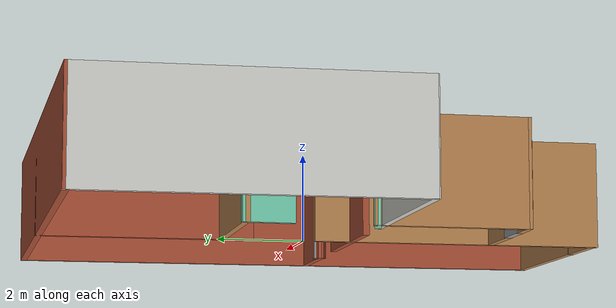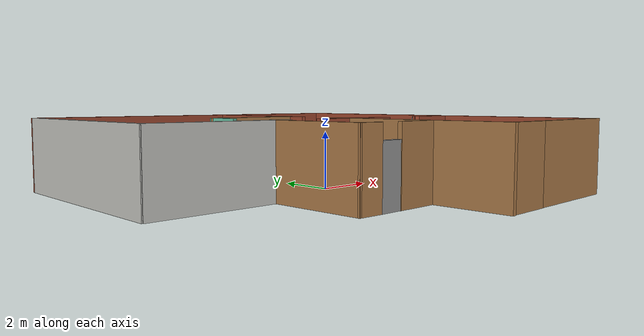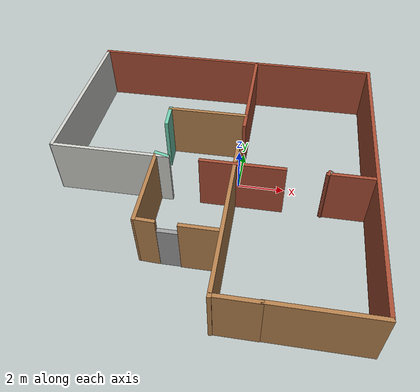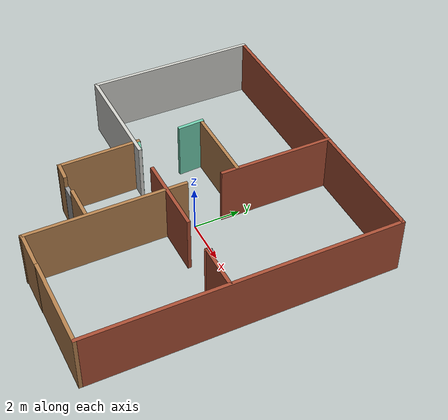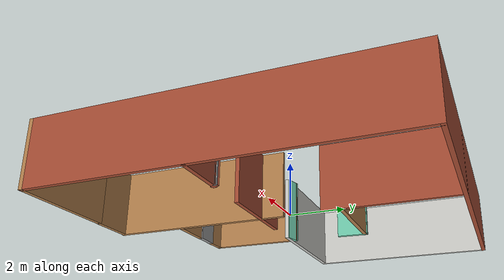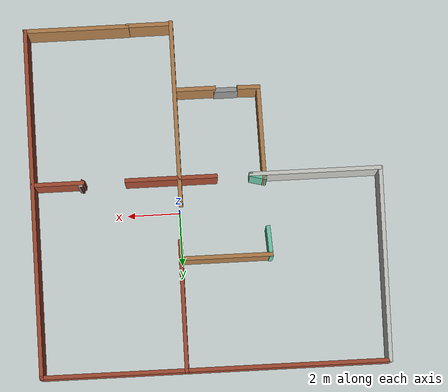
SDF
<?xml version='1.0'?>
<sdf version='1.7'>
  <model name='flat1'>
    <pose>-1.07714 -0.487481 0 0 -0 0</pose>
    <link name='Door_0'>
      <collision name='Door_0_Collision'>
        <geometry>
          <box>
            <size>0.9 0.17 2</size>
          </box>
        </geometry>
        <pose>0 0 1 0 -0 0</pose>
      </collision>
      <visual name='Door_0_Visual'>
        <pose>0 0 1 0 -0 0</pose>
        <geometry>
          <box>
            <size>0.9 0.17 2</size>
          </box>
        </geometry>
        <material>
          <script>
            <uri>file://media/materials/scripts/gazebo.material</uri>
            <name>Gazebo/Grey</name>
          </script>
        </material>
      </visual>
      <pose>-0.905945 -3.98046 0 0 -0 0</pose>
    </link>
    <link name='Wall_1'>
      <collision name='Wall_1_Collision'>
        <geometry>
          <box>
            <size>13.25 0.15 2.5</size>
          </box>
        </geometry>
        <pose>0 0 1.25 0 -0 0</pose>
      </collision>
      <visual name='Wall_1_Visual'>
        <pose>0 0 1.25 0 -0 0</pose>
        <geometry>
          <box>
            <size>13.25 0.15 2.5</size>
          </box>
        </geometry>
        <material>
          <script>
            <uri>file://media/materials/scripts/gazebo.material</uri>
            <name>Gazebo/Bricks</name>
          </script>
          <ambient>1 1 1 1</ambient>
        </material>
        <meta>
          <layer>0</layer>
        </meta>
      </visual>
      <pose>0.015453 6.57317 0 0 -0 0</pose>
    </link>
    <link name='Wall_11'>
      <collision name='Wall_11_Collision'>
        <geometry>
          <box>
            <size>1.18535 0.15 2.5</size>
          </box>
        </geometry>
        <pose>0 0 1.25 0 -0 0</pose>
      </collision>
      <visual name='Wall_11_Visual'>
        <pose>0 0 1.25 0 -0 0</pose>
        <geometry>
          <box>
            <size>1.18535 0.15 2.5</size>
          </box>
        </geometry>
        <material>
          <script>
            <uri>file://media/materials/scripts/gazebo.material</uri>
            <name>Gazebo/Grey</name>
          </script>
          <ambient>0.435294 0.796078 0.67451 1</ambient>
        </material>
        <meta>
          <layer>0</layer>
        </meta>
      </visual>
      <pose>-2.25191 1.8896 0 0 -0 1.62992</pose>
    </link>
    <link name='Wall_12'>
      <collision name='Wall_12_Collision'>
        <geometry>
          <box>
            <size>3.5 0.15 2.5</size>
          </box>
        </geometry>
        <pose>0 0 1.25 0 -0 0</pose>
      </collision>
      <visual name='Wall_12_Visual'>
        <pose>0 0 1.25 0 -0 0</pose>
        <geometry>
          <box>
            <size>3.5 0.15 2.5</size>
          </box>
        </geometry>
        <material>
          <script>
            <uri>file://media/materials/scripts/gazebo.material</uri>
            <name>Gazebo/Wood</name>
          </script>
          <ambient>1 1 1 1</ambient>
        </material>
        <meta>
          <layer>0</layer>
        </meta>
      </visual>
      <pose>-0.607505 2.37578 0 0 -0 0</pose>
    </link>
    <link name='Wall_14'>
      <collision name='Wall_14_Collision'>
        <geometry>
          <box>
            <size>7.37243 0.15 2.5</size>
          </box>
        </geometry>
        <pose>0 0 1.25 0 -0 0</pose>
      </collision>
      <visual name='Wall_14_Visual'>
        <pose>0 0 1.25 0 -0 0</pose>
        <geometry>
          <box>
            <size>7.37243 0.15 2.5</size>
          </box>
        </geometry>
        <material>
          <script>
            <uri>file://media/materials/scripts/gazebo.material</uri>
            <name>Gazebo/CeilingTiled</name>
          </script>
          <ambient>1 1 1 1</ambient>
        </material>
        <meta>
          <layer>0</layer>
        </meta>
      </visual>
      <pose>-6.54984 2.96199 0 0 -0 -1.57503</pose>
    </link>
    <link name='Wall_16'>
      <collision name='Wall_16_Collision'>
        <geometry>
          <box>
            <size>5 0.15 2.5</size>
          </box>
        </geometry>
        <pose>0 0 1.25 0 -0 0</pose>
      </collision>
      <visual name='Wall_16_Visual'>
        <pose>0 0 1.25 0 -0 0</pose>
        <geometry>
          <box>
            <size>5 0.15 2.5</size>
          </box>
        </geometry>
        <material>
          <script>
            <uri>file://media/materials/scripts/gazebo.material</uri>
            <name>Gazebo/CeilingTiled</name>
          </script>
          <ambient>1 1 1 1</ambient>
        </material>
        <meta>
          <layer>0</layer>
        </meta>
      </visual>
      <pose>-4.10955 -0.679785 0 0 -0 0</pose>
    </link>
    <link name='Wall_17'>
      <collision name='Wall_17_Collision'>
        <geometry>
          <box>
            <size>0.637952 0.15 2.5</size>
          </box>
        </geometry>
        <pose>0 0 1.25 0 -0 0</pose>
      </collision>
      <visual name='Wall_17_Visual'>
        <pose>0 0 1.25 0 -0 0</pose>
        <geometry>
          <box>
            <size>0.637952 0.15 2.5</size>
          </box>
        </geometry>
        <material>
          <script>
            <uri>file://media/materials/scripts/gazebo.material</uri>
            <name>Gazebo/Grey</name>
          </script>
          <ambient>0.435294 0.796078 0.67451 1</ambient>
        </material>
        <meta>
          <layer>0</layer>
        </meta>
      </visual>
      <pose>-1.95132 -0.588014 0 0 -0 2.88812</pose>
    </link>
    <link name='Wall_18'>
      <collision name='Wall_18_Collision'>
        <geometry>
          <box>
            <size>3.58704 0.15 2.5</size>
          </box>
        </geometry>
        <pose>0 0 1.25 0 -0 0</pose>
      </collision>
      <visual name='Wall_18_Visual'>
        <pose>0 0 1.25 0 -0 0</pose>
        <geometry>
          <box>
            <size>3.58704 0.15 2.5</size>
          </box>
        </geometry>
        <material>
          <script>
            <uri>file://media/materials/scripts/gazebo.material</uri>
            <name>Gazebo/Wood</name>
          </script>
          <ambient>1 1 1 1</ambient>
        </material>
        <meta>
          <layer>0</layer>
        </meta>
      </visual>
      <pose>-2.15691 -2.24508 0 0 -0 -1.55299</pose>
    </link>
    <link name='Wall_19'>
      <collision name='Wall_19_Collision'>
        <geometry>
          <box>
            <size>0.873008 0.15 2.5</size>
          </box>
        </geometry>
        <pose>0 0 1.25 0 -0 0</pose>
      </collision>
      <visual name='Wall_19_Visual'>
        <pose>0 0 1.25 0 -0 0</pose>
        <geometry>
          <box>
            <size>0.873008 0.15 2.5</size>
          </box>
        </geometry>
        <material>
          <script>
            <uri>file://media/materials/scripts/gazebo.material</uri>
            <name>Gazebo/Wood</name>
          </script>
          <ambient>1 1 1 1</ambient>
        </material>
        <meta>
          <layer>0</layer>
        </meta>
      </visual>
      <pose>-1.76514 -3.97862 0 0 -0 -0.042322</pose>
    </link>
    <link name='Wall_2'>
      <collision name='Wall_2_Collision'>
        <geometry>
          <box>
            <size>13.25 0.15 2.5</size>
          </box>
        </geometry>
        <pose>0 0 1.25 0 -0 0</pose>
      </collision>
      <visual name='Wall_2_Visual'>
        <pose>0 0 1.25 0 -0 0</pose>
        <geometry>
          <box>
            <size>13.25 0.15 2.5</size>
          </box>
        </geometry>
        <material>
          <script>
            <uri>file://media/materials/scripts/gazebo.material</uri>
            <name>Gazebo/Bricks</name>
          </script>
          <ambient>1 1 1 1</ambient>
        </material>
        <meta>
          <layer>0</layer>
        </meta>
      </visual>
      <pose>6.56545 0.023166 0 0 -0 -1.5708</pose>
    </link>
    <link name='Wall_21'>
      <collision name='Wall_21_Collision'>
        <geometry>
          <box>
            <size>3.5 0.15 2.5</size>
          </box>
        </geometry>
        <pose>0 0 1.25 0 -0 0</pose>
      </collision>
      <visual name='Wall_21_Visual'>
        <pose>0 0 1.25 0 -0 0</pose>
        <geometry>
          <box>
            <size>3.5 0.15 2.5</size>
          </box>
        </geometry>
        <material>
          <script>
            <uri>file://media/materials/scripts/gazebo.material</uri>
            <name>Gazebo/Bricks</name>
          </script>
          <ambient>1 1 1 1</ambient>
        </material>
        <meta>
          <layer>0</layer>
        </meta>
      </visual>
      <pose>1.33461 -0.676718 0 0 -0 3.14159</pose>
    </link>
    <link name='Wall_24'>
      <collision name='Wall_24_Collision'>
        <geometry>
          <box>
            <size>6.87243 0.15 2.5</size>
          </box>
        </geometry>
        <pose>0 0 1.25 0 -0 0</pose>
      </collision>
      <visual name='Wall_24_Visual'>
        <pose>0 0 1.25 0 -0 0</pose>
        <geometry>
          <box>
            <size>6.87243 0.15 2.5</size>
          </box>
        </geometry>
        <material>
          <script>
            <uri>file://media/materials/scripts/gazebo.material</uri>
            <name>Gazebo/Wood</name>
          </script>
          <ambient>1 1 1 1</ambient>
        </material>
        <meta>
          <layer>0</layer>
        </meta>
      </visual>
      <pose>1.03653 -3.21196 0 0 -0 -1.56625</pose>
    </link>
    <link name='Wall_25'>
      <collision name='Wall_25_Collision'>
        <geometry>
          <box>
            <size>1.75 0.15 2.5</size>
          </box>
        </geometry>
        <pose>0 0 1.25 0 -0 0</pose>
      </collision>
      <visual name='Wall_25_Visual'>
        <pose>0 0 1.25 0 -0 0</pose>
        <geometry>
          <box>
            <size>1.75 0.15 2.5</size>
          </box>
        </geometry>
        <material>
          <script>
            <uri>file://media/materials/scripts/gazebo.material</uri>
            <name>Gazebo/Wood</name>
          </script>
          <ambient>1 1 1 1</ambient>
        </material>
        <meta>
          <layer>0</layer>
        </meta>
      </visual>
      <pose>1.88242 -6.54255 0 0 -0 0</pose>
    </link>
    <link name='Wall_28'>
      <collision name='Wall_28_Collision'>
        <geometry>
          <box>
            <size>1.5 0.15 2.5</size>
          </box>
        </geometry>
        <pose>0 0 1.25 0 -0 0</pose>
      </collision>
      <visual name='Wall_28_Visual'>
        <pose>0 0 1.25 0 -0 0</pose>
        <geometry>
          <box>
            <size>1.5 0.15 2.5</size>
          </box>
        </geometry>
        <material>
          <script>
            <uri>file://media/materials/scripts/gazebo.material</uri>
            <name>Gazebo/Wood</name>
          </script>
          <ambient>1 1 1 1</ambient>
        </material>
        <meta>
          <layer>0</layer>
        </meta>
      </visual>
      <pose>0.223879 -4.01105 0 0 -0 3.14159</pose>
    </link>
    <link name='Wall_3'>
      <collision name='Wall_3_Collision'>
        <geometry>
          <box>
            <size>4 0.15 2.5</size>
          </box>
        </geometry>
        <pose>0 0 1.25 0 -0 0</pose>
      </collision>
      <visual name='Wall_3_Visual'>
        <pose>0 0 1.25 0 -0 0</pose>
        <geometry>
          <box>
            <size>4 0.15 2.5</size>
          </box>
        </geometry>
        <material>
          <script>
            <uri>file://media/materials/scripts/gazebo.material</uri>
            <name>Gazebo/Wood</name>
          </script>
          <ambient>1 1 1 1</ambient>
        </material>
        <meta>
          <layer>0</layer>
        </meta>
      </visual>
      <pose>4.64045 -6.52683 0 0 -0 3.14159</pose>
    </link>
    <link name='Wall_5'>
      <collision name='Wall_5_Collision'>
        <geometry>
          <box>
            <size>2 0.15 2.5</size>
          </box>
        </geometry>
        <pose>0 0 1.25 0 -0 0</pose>
      </collision>
      <visual name='Wall_5_Visual'>
        <pose>0 0 1.25 0 -0 0</pose>
        <geometry>
          <box>
            <size>2 0.15 2.5</size>
          </box>
        </geometry>
        <material>
          <script>
            <uri>file://media/materials/scripts/gazebo.material</uri>
            <name>Gazebo/Bricks</name>
          </script>
          <ambient>1 1 1 1</ambient>
        </material>
        <meta>
          <layer>0</layer>
        </meta>
      </visual>
      <pose>5.60248 -0.676718 0 0 -0 3.14159</pose>
    </link>
    <link name='Wall_6'>
      <collision name='Wall_6_Collision'>
        <geometry>
          <box>
            <size>0.291559 0.15 2.5</size>
          </box>
        </geometry>
        <pose>0 0 1.25 0 -0 0</pose>
      </collision>
      <visual name='Wall_6_Visual'>
        <pose>0 0 1.25 0 -0 0</pose>
        <geometry>
          <box>
            <size>0.291559 0.15 2.5</size>
          </box>
        </geometry>
        <material>
          <script>
            <uri>file://media/materials/scripts/gazebo.material</uri>
            <name>Gazebo/Bricks</name>
          </script>
          <ambient>1 1 1 1</ambient>
        </material>
        <meta>
          <layer>0</layer>
        </meta>
      </visual>
      <pose>4.71307 -0.646128 0 0 -0 1.04392</pose>
    </link>
    <link name='Wall_7'>
      <collision name='Wall_7_Collision'>
        <geometry>
          <box>
            <size>0.16 0.15 2.5</size>
          </box>
        </geometry>
        <pose>0 0 1.25 0 -0 0</pose>
      </collision>
      <visual name='Wall_7_Visual'>
        <pose>0 0 1.25 0 -0 0</pose>
        <geometry>
          <box>
            <size>0.16 0.15 2.5</size>
          </box>
        </geometry>
        <material>
          <script>
            <uri>file://media/materials/scripts/gazebo.material</uri>
            <name>Gazebo/Grey</name>
          </script>
          <ambient>1 1 1 1</ambient>
        </material>
        <meta>
          <layer>0</layer>
        </meta>
      </visual>
      <pose>4.75366 -0.584947 0 0 -0 0</pose>
    </link>
    <link name='Wall_9'>
      <collision name='Wall_9_Collision'>
        <geometry>
          <box>
            <size>5 0.15 2.5</size>
          </box>
        </geometry>
        <pose>0 0 1.25 0 -0 0</pose>
      </collision>
      <visual name='Wall_9_Visual'>
        <pose>0 0 1.25 0 -0 0</pose>
        <geometry>
          <box>
            <size>5 0.15 2.5</size>
          </box>
        </geometry>
        <material>
          <script>
            <uri>file://media/materials/scripts/gazebo.material</uri>
            <name>Gazebo/Bricks</name>
          </script>
          <ambient>1 1 1 1</ambient>
        </material>
        <meta>
          <layer>0</layer>
        </meta>
      </visual>
      <pose>1.11301 4.14817 0 0 -0 -1.5708</pose>
    </link>
    <static>1</static>
  </model>
</sdf>
